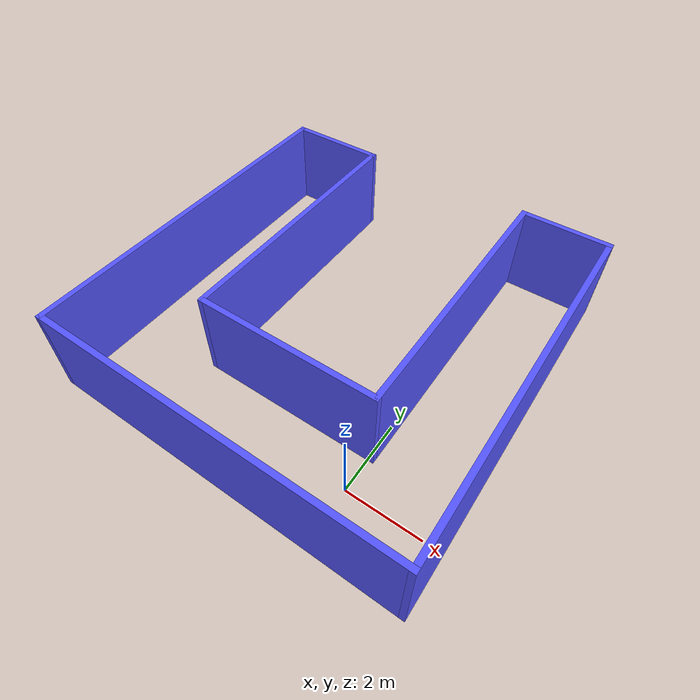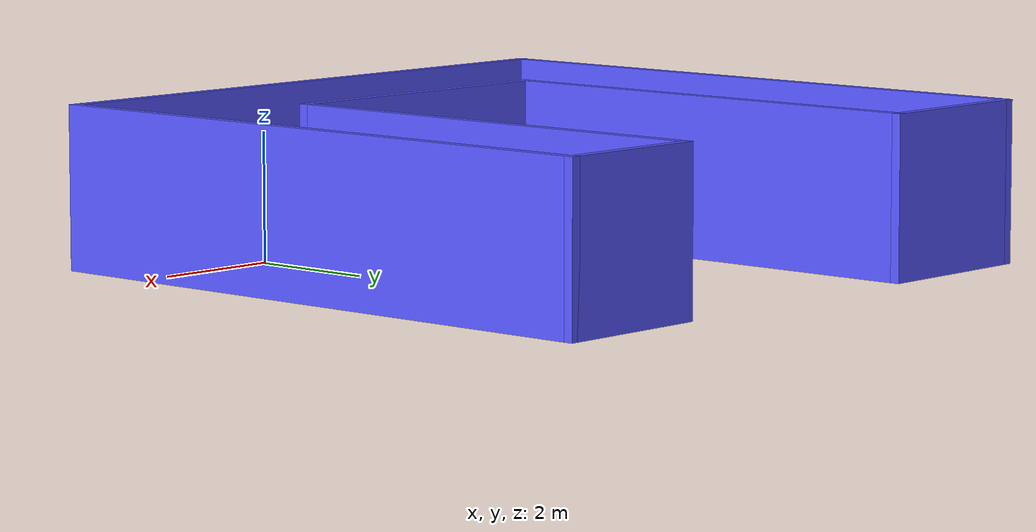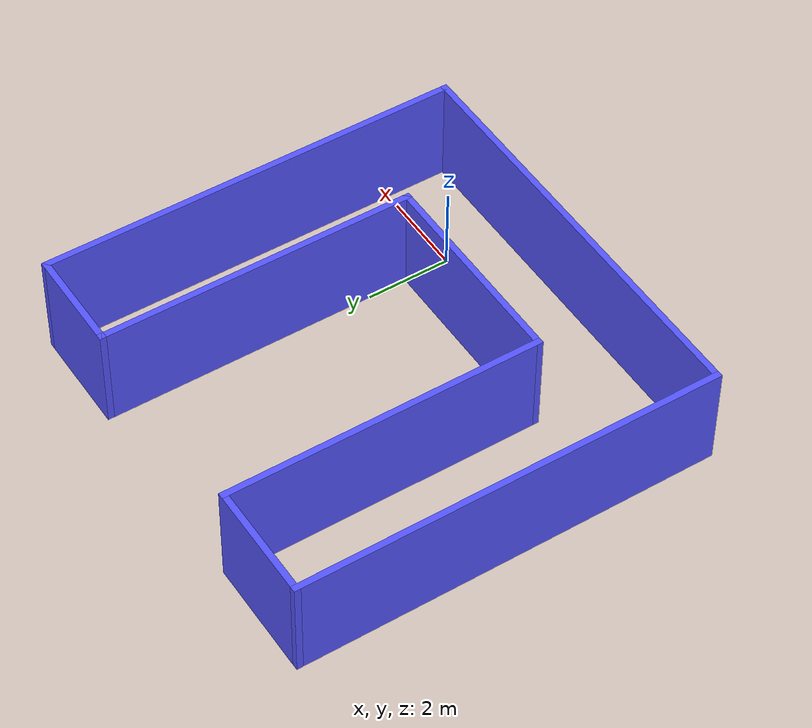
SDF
<?xml version='1.0'?>
<sdf version='1.6'>
  <model name='env'>
    <pose frame=''>-2.50015 3.42289 0 0 -0 0</pose>
    <link name='Wall_15'>
      <collision name='Wall_15_Collision'>
        <geometry>
          <box>
            <size>10 0.15 2.5</size>
          </box>
        </geometry>
        <pose frame=''>0 0 1.25 0 -0 0</pose>
      </collision>
      <visual name='Wall_15_Visual'>
        <pose frame=''>0 0 1.25 0 -0 0</pose>
        <geometry>
          <box>
            <size>10 0.15 2.5</size>
          </box>
        </geometry>
        <material>
          <script>
            <uri>file://media/materials/scripts/gazebo.material</uri>
            <name>Gazebo/Grey</name>
          </script>
          <ambient>0.333333 0.333333 1 1</ambient>
        </material>
        <meta>
          <layer>0</layer>
        </meta>
      </visual>
      <pose frame=''>-4.925 0 0 0 0 -1.5708</pose>
    </link>
    <link name='Wall_16'>
      <collision name='Wall_16_Collision'>
        <geometry>
          <box>
            <size>10 0.15 2.5</size>
          </box>
        </geometry>
        <pose frame=''>0 0 1.25 0 -0 0</pose>
      </collision>
      <visual name='Wall_16_Visual'>
        <pose frame=''>0 0 1.25 0 -0 0</pose>
        <geometry>
          <box>
            <size>10 0.15 2.5</size>
          </box>
        </geometry>
        <material>
          <script>
            <uri>file://media/materials/scripts/gazebo.material</uri>
            <name>Gazebo/Grey</name>
          </script>
          <ambient>0.333333 0.333333 1 1</ambient>
        </material>
        <meta>
          <layer>0</layer>
        </meta>
      </visual>
      <pose frame=''>0 -4.925 0 0 -0 0</pose>
    </link>
    <link name='Wall_17'>
      <collision name='Wall_17_Collision'>
        <geometry>
          <box>
            <size>10 0.15 2.5</size>
          </box>
        </geometry>
        <pose frame=''>0 0 1.25 0 -0 0</pose>
      </collision>
      <visual name='Wall_17_Visual'>
        <pose frame=''>0 0 1.25 0 -0 0</pose>
        <geometry>
          <box>
            <size>10 0.15 2.5</size>
          </box>
        </geometry>
        <material>
          <script>
            <uri>file://media/materials/scripts/gazebo.material</uri>
            <name>Gazebo/Grey</name>
          </script>
          <ambient>0.333333 0.333333 1 1</ambient>
        </material>
        <meta>
          <layer>0</layer>
        </meta>
      </visual>
      <pose frame=''>4.925 0 0 0 -0 1.5708</pose>
    </link>
    <link name='Wall_18'>
      <collision name='Wall_18_Collision'>
        <geometry>
          <box>
            <size>2.5 0.15 2.5</size>
          </box>
        </geometry>
        <pose frame=''>0 0 1.25 0 -0 0</pose>
      </collision>
      <visual name='Wall_18_Visual'>
        <pose frame=''>0 0 1.25 0 -0 0</pose>
        <geometry>
          <box>
            <size>2.5 0.15 2.5</size>
          </box>
        </geometry>
        <material>
          <script>
            <uri>file://media/materials/scripts/gazebo.material</uri>
            <name>Gazebo/Grey</name>
          </script>
          <ambient>0.333333 0.333333 1 1</ambient>
        </material>
        <meta>
          <layer>0</layer>
        </meta>
      </visual>
      <pose frame=''>3.75 4.925 0 0 -0 3.14159</pose>
    </link>
    <link name='Wall_19'>
      <collision name='Wall_19_Collision'>
        <geometry>
          <box>
            <size>7.5 0.15 2.5</size>
          </box>
        </geometry>
        <pose frame=''>0 0 1.25 0 -0 0</pose>
      </collision>
      <visual name='Wall_19_Visual'>
        <pose frame=''>0 0 1.25 0 -0 0</pose>
        <geometry>
          <box>
            <size>7.5 0.15 2.5</size>
          </box>
        </geometry>
        <material>
          <script>
            <uri>file://media/materials/scripts/gazebo.material</uri>
            <name>Gazebo/Grey</name>
          </script>
          <ambient>0.333333 0.333333 1 1</ambient>
        </material>
        <meta>
          <layer>0</layer>
        </meta>
      </visual>
      <pose frame=''>2.575 1.25 0 0 0 -1.5708</pose>
    </link>
    <link name='Wall_20'>
      <collision name='Wall_20_Collision'>
        <geometry>
          <box>
            <size>5 0.15 2.5</size>
          </box>
        </geometry>
        <pose frame=''>0 0 1.25 0 -0 0</pose>
      </collision>
      <visual name='Wall_20_Visual'>
        <pose frame=''>0 0 1.25 0 -0 0</pose>
        <geometry>
          <box>
            <size>5 0.15 2.5</size>
          </box>
        </geometry>
        <material>
          <script>
            <uri>file://media/materials/scripts/gazebo.material</uri>
            <name>Gazebo/Grey</name>
          </script>
          <ambient>0.333333 0.333333 1 1</ambient>
        </material>
        <meta>
          <layer>0</layer>
        </meta>
      </visual>
      <pose frame=''>0.15 -2.425 0 0 -0 3.14159</pose>
    </link>
    <link name='Wall_21'>
      <collision name='Wall_21_Collision'>
        <geometry>
          <box>
            <size>7.5 0.15 2.5</size>
          </box>
        </geometry>
        <pose frame=''>0 0 1.25 0 -0 0</pose>
      </collision>
      <visual name='Wall_21_Visual'>
        <pose frame=''>0 0 1.25 0 -0 0</pose>
        <geometry>
          <box>
            <size>7.5 0.15 2.5</size>
          </box>
        </geometry>
        <material>
          <script>
            <uri>file://media/materials/scripts/gazebo.material</uri>
            <name>Gazebo/Grey</name>
          </script>
          <ambient>0.333333 0.333333 1 1</ambient>
        </material>
        <meta>
          <layer>0</layer>
        </meta>
      </visual>
      <pose frame=''>-2.275 1.25 0 0 -0 1.5708</pose>
    </link>
    <link name='Wall_22'>
      <collision name='Wall_22_Collision'>
        <geometry>
          <box>
            <size>2.8 0.15 2.5</size>
          </box>
        </geometry>
        <pose frame=''>0 0 1.25 0 -0 0</pose>
      </collision>
      <visual name='Wall_22_Visual'>
        <pose frame=''>0 0 1.25 0 -0 0</pose>
        <geometry>
          <box>
            <size>2.8 0.15 2.5</size>
          </box>
        </geometry>
        <material>
          <script>
            <uri>file://media/materials/scripts/gazebo.material</uri>
            <name>Gazebo/Grey</name>
          </script>
          <ambient>0.333333 0.333333 1 1</ambient>
        </material>
        <meta>
          <layer>0</layer>
        </meta>
      </visual>
      <pose frame=''>-3.6 4.925 0 0 0 -3.14159</pose>
    </link>
    <static>1</static>
  </model>
</sdf>
